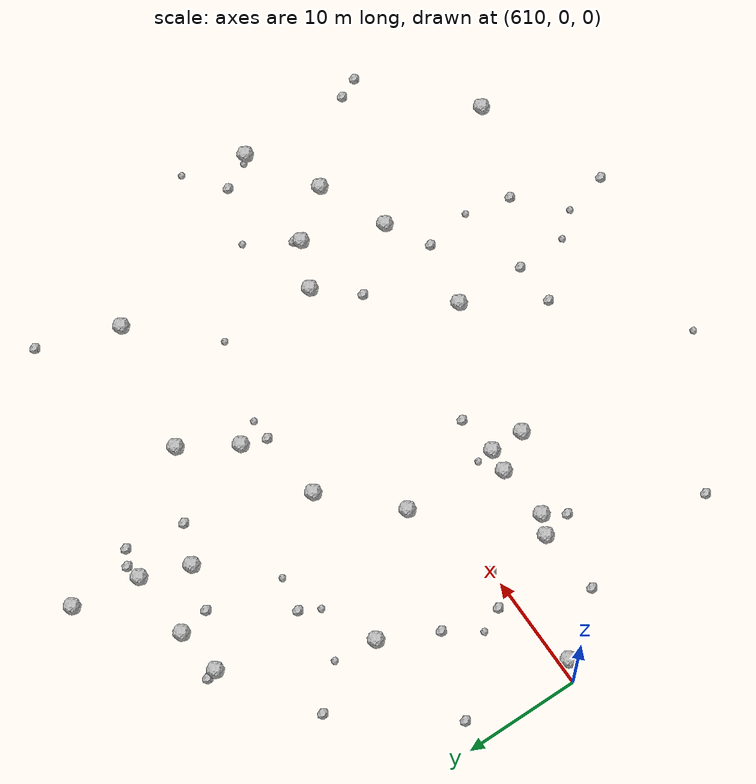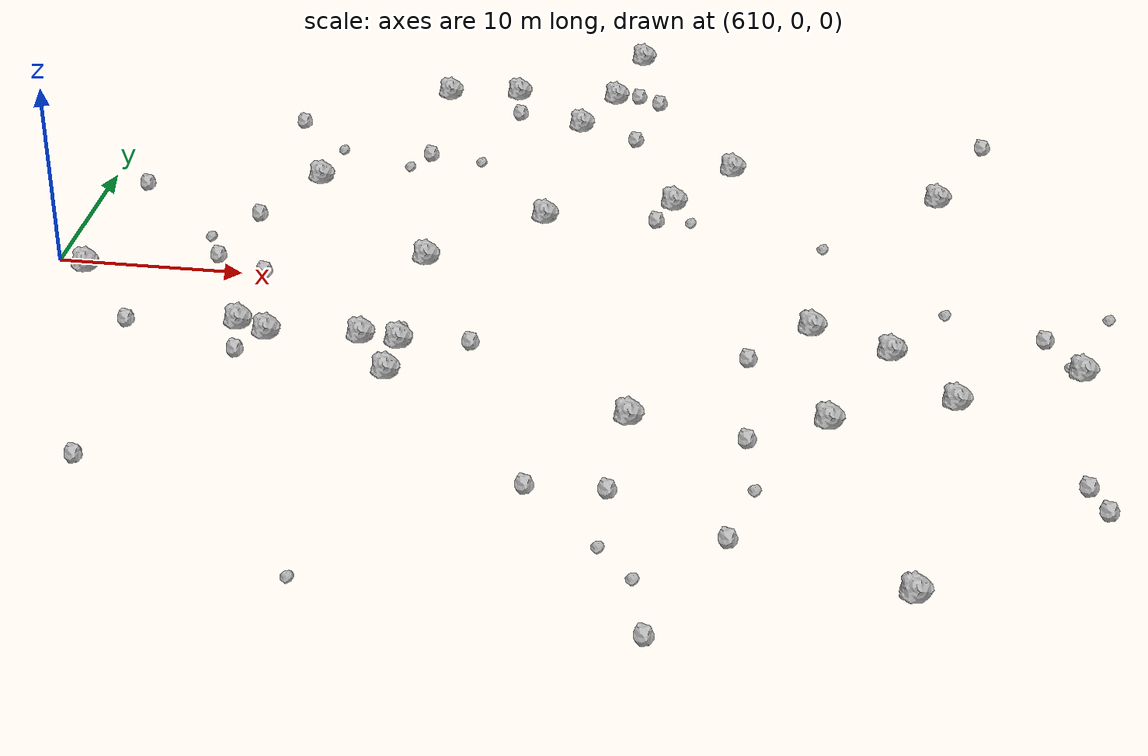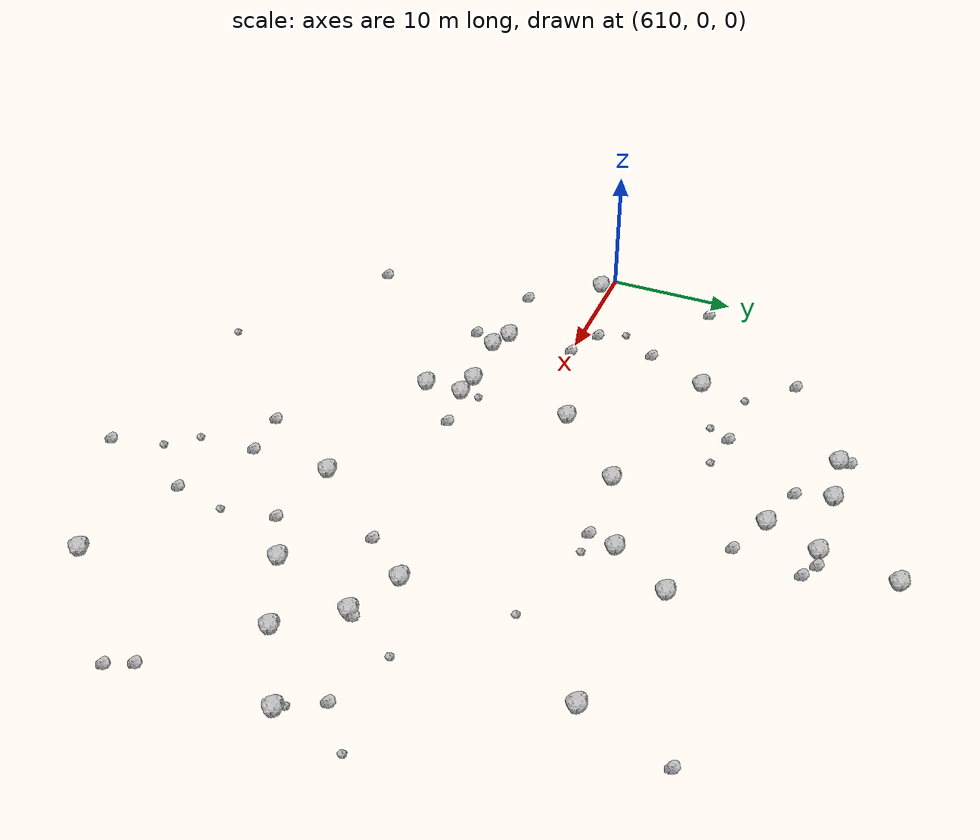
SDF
<sdf version="1.6">
 <world name="default">
  <include><uri>model://sun</uri></include>
  <model name="rock1_16_3">
   <include><uri>model://rock1</uri><pose>656.1149569980562 13.201536090829585 0.5 0 0 0</pose></include>
  </model>
  <model name="rock1_16_4">
   <include><uri>model://rock1</uri><pose>622.9148855486496 -6.065737663964143 0.5 0 0 0</pose></include>
  </model>
  <model name="rock1_16_5">
   <include><uri>model://rock1</uri><pose>650.1467537836565 -1.6864975403233018 0.5 0 0 0</pose></include>
  </model>
  <model name="rock1_16_6">
   <include><uri>model://rock1</uri><pose>654.2065766695247 -3.5124035258955857 0.5 0 0 0</pose></include>
  </model>
  <model name="rock1_16_7">
   <include><uri>model://rock1</uri><pose>629.6743814128226 -8.888810011958455 0.5 0 0 0</pose></include>
  </model>
  <model name="rock1_16_8">
   <include><uri>model://rock1</uri><pose>641.7026719829911 10.770928814416408 0.5 0 0 0</pose></include>
  </model>
  <model name="rock1_16_9">
   <include><uri>model://rock1</uri><pose>621.241692226689 -5.297242970264843 0.5 0 0 0</pose></include>
  </model>
  <model name="rock1_16_10">
   <include><uri>model://rock1</uri><pose>630.8978803253377 23.5445969078598 0.5 0 0 0</pose></include>
  </model>
  <model name="rock1_16_11">
   <include><uri>model://rock1</uri><pose>642.0374478030577 -11.254294582027697 0.5 0 0 0</pose></include>
  </model>
  <model name="rock1_16_12">
   <include><uri>model://rock1</uri><pose>634.8902242769249 8.204998214174097 0.5 0 0 0</pose></include>
  </model>
  <model name="rock1_16_13">
   <include><uri>model://rock1</uri><pose>635.2395317567391 19.761060834143144 0.5 0 0 0</pose></include>
  </model>
  <model name="rock1_16_14">
   <include><uri>model://rock1</uri><pose>651.5205260311714 -10.237457767179986 0.5 0 0 0</pose></include>
  </model>
  <model name="rock1_16_15">
   <include><uri>model://rock1</uri><pose>611.684250035289 -0.7187004358383788 0.5 0 0 0</pose></include>
  </model>
  <model name="rock1_16_16">
   <include><uri>model://rock1</uri><pose>636.7579632555324 23.830117460936002 0.5 0 0 0</pose></include>
  </model>
  <model name="rock1_16_17">
   <include><uri>model://rock1</uri><pose>629.3659525218284 2.6970724657225276 0.5 0 0 0</pose></include>
  </model>
  <model name="rock1_16_18">
   <include><uri>model://rock1</uri><pose>657.5065878998355 -7.6468018472649355 0.5 0 0 0</pose></include>
  </model>
  <model name="rock1_16_19">
   <include><uri>model://rock1</uri><pose>621.67759717573 11.037159824020243 0.5 0 0 0</pose></include>
  </model>
  <model name="rock1_16_20">
   <include><uri>model://rock1</uri><pose>637.6999892867808 29.598292940463487 0.5 0 0 0</pose></include>
  </model>
  <model name="rock1_16_21">
   <include><uri>model://rock1</uri><pose>629.7034445821932 -5.947622430997775 0.5 0 0 0</pose></include>
  </model>
  <model name="rock1_16_22">
   <include><uri>model://rock1</uri><pose>655.9946921489988 -23.328607278813426 0.5 0 0 0</pose></include>
  </model>
  <model name="rock1_16_23">
   <include><uri>model://rock1</uri><pose>663.5956941839286 -4.085917529573194 0.5 0 0 0</pose></include>
  </model>
  <model name="rock1_16_24">
   <include><uri>model://rock1</uri><pose>627.7139357502149 -5.719378001251897 0.5 0 0 0</pose></include>
  </model>
  <model name="rock1_16_25">
   <include><uri>model://rock1</uri><pose>626.791089778512 23.00532312882477 0.5 0 0 0</pose></include>
  </model>
  <model name="rock1_16_26">
   <include><uri>model://rock1</uri><pose>644.5338365501409 15.305789906799 0.5 0 0 0</pose></include>
  </model>
  <model name="rock2_16_0">
   <include><uri>model://rock2</uri><pose>639.4000453961551 23.3800926518461 0.3 0 0 0</pose></include>
  </model>
  <model name="rock2_16_1">
   <include><uri>model://rock2</uri><pose>640.9606859196468 8.656851451280083 0.3 0 0 0</pose></include>
  </model>
  <model name="rock2_16_2">
   <include><uri>model://rock2</uri><pose>619.0108238002518 17.928798963787152 0.3 0 0 0</pose></include>
  </model>
  <model name="rock2_16_3">
   <include><uri>model://rock2</uri><pose>647.6380200894644 -20.434048687477173 0.3 0 0 0</pose></include>
  </model>
  <model name="rock2_16_4">
   <include><uri>model://rock2</uri><pose>658.4718597873482 20.1797125140278 0.3 0 0 0</pose></include>
  </model>
  <model name="rock2_16_5">
   <include><uri>model://rock2</uri><pose>647.1940739177986 -5.086097128393966 0.3 0 0 0</pose></include>
  </model>
  <model name="rock2_16_6">
   <include><uri>model://rock2</uri><pose>616.8618410213734 -18.18016453178396 0.3 0 0 0</pose></include>
  </model>
  <model name="rock2_16_7">
   <include><uri>model://rock2</uri><pose>626.5623818402208 23.855210571555794 0.3 0 0 0</pose></include>
  </model>
  <model name="rock2_16_8">
   <include><uri>model://rock2</uri><pose>615.5159241655155 -5.791870137758114 0.3 0 0 0</pose></include>
  </model>
  <model name="rock2_16_9">
   <include><uri>model://rock2</uri><pose>664.3893537910765 -15.869517377840573 0.3 0 0 0</pose></include>
  </model>
  <model name="rock2_16_10">
   <include><uri>model://rock2</uri><pose>663.5457609483404 -14.038786667447383 0.3 0 0 0</pose></include>
  </model>
  <model name="rock2_16_11">
   <include><uri>model://rock2</uri><pose>647.7720139998 -12.340776942718954 0.3 0 0 0</pose></include>
  </model>
  <model name="rock2_16_12">
   <include><uri>model://rock2</uri><pose>641.8441874944782 -17.408143703732186 0.3 0 0 0</pose></include>
  </model>
  <model name="rock2_16_13">
   <include><uri>model://rock2</uri><pose>621.7738019432876 -7.857628984073951 0.3 0 0 0</pose></include>
  </model>
  <model name="rock2_16_14">
   <include><uri>model://rock2</uri><pose>633.2784475901229 -5.468064457967859 0.3 0 0 0</pose></include>
  </model>
  <model name="rock2_16_15">
   <include><uri>model://rock2</uri><pose>619.3553055593313 6.273706119065146 0.3 0 0 0</pose></include>
  </model>
  <model name="rock2_16_16">
   <include><uri>model://rock2</uri><pose>654.5042868753445 -3.029242190628871 0.3 0 0 0</pose></include>
  </model>
  <model name="rock2_16_17">
   <include><uri>model://rock2</uri><pose>638.0831682409187 24.101447032969915 0.3 0 0 0</pose></include>
  </model>
  <model name="rock2_16_18">
   <include><uri>model://rock2</uri><pose>638.6132871057251 18.31851510602783 0.3 0 0 0</pose></include>
  </model>
  <model name="rock2_16_19">
   <include><uri>model://rock2</uri><pose>638.0413669058834 -17.597495454718672 0.3 0 0 0</pose></include>
  </model>
  <model name="rock2_16_20">
   <include><uri>model://rock2</uri><pose>644.8260782885756 -27.878172758963608 0.3 0 0 0</pose></include>
  </model>
  <model name="rock2_16_21">
   <include><uri>model://rock2</uri><pose>661.7558179773889 -1.1409266416933797 0.3 0 0 0</pose></include>
  </model>
  <model name="rock2_16_22">
   <include><uri>model://rock2</uri><pose>621.2129542328767 0.08583254682686814 0.3 0 0 0</pose></include>
  </model>
  <model name="rock2_16_23">
   <include><uri>model://rock2</uri><pose>631.4120534535467 20.87983798019303 0.3 0 0 0</pose></include>
  </model>
  <model name="rock2_16_24">
   <include><uri>model://rock2</uri><pose>618.3814971858595 1.3851109536599928 0.3 0 0 0</pose></include>
  </model>
  <model name="rock2_16_25">
   <include><uri>model://rock2</uri><pose>627.2280487681813 14.808066198010081 0.3 0 0 0</pose></include>
  </model>
  <model name="rock2_16_26">
   <include><uri>model://rock2</uri><pose>612.1868394524902 8.93076706792668 0.3 0 0 0</pose></include>
  </model>
  <model name="rock3_16_0">
   <include><uri>model://rock3</uri><pose>617.3717033303817 3.4237803412719643 0.2 0 0 0</pose></include>
  </model>
  <model name="rock3_16_1">
   <include><uri>model://rock3</uri><pose>626.3073914870874 13.122601278648041 0.2 0 0 0</pose></include>
  </model>
  <model name="rock3_16_2">
   <include><uri>model://rock3</uri><pose>630.2239950076713 14.260932494511067 0.2 0 0 0</pose></include>
  </model>
  <model name="rock3_16_3">
   <include><uri>model://rock3</uri><pose>642.008434512604 -21.895615048050097 0.2 0 0 0</pose></include>
  </model>
  <model name="rock3_16_4">
   <include><uri>model://rock3</uri><pose>648.4829372517212 -16.492771161164747 0.2 0 0 0</pose></include>
  </model>
  <model name="rock3_16_5">
   <include><uri>model://rock3</uri><pose>662.9735032913414 -3.581208813996458 0.2 0 0 0</pose></include>
  </model>
  <model name="rock3_16_6">
   <include><uri>model://rock3</uri><pose>622.1020352092114 14.66690627153536 0.2 0 0 0</pose></include>
  </model>
  <model name="rock3_16_7">
   <include><uri>model://rock3</uri><pose>642.8290910126659 8.685234708521591 0.2 0 0 0</pose></include>
  </model>
  <model name="rock3_16_8">
   <include><uri>model://rock3</uri><pose>643.8241716879634 -24.000280208691933 0.2 0 0 0</pose></include>
  </model>
  <model name="rock3_16_9">
   <include><uri>model://rock3</uri><pose>656.733869578373 0.6735293435753533 0.2 0 0 0</pose></include>
  </model>
  <model name="rock3_16_10">
   <include><uri>model://rock3</uri><pose>629.559240195782 -4.53576050532714 0.2 0 0 0</pose></include>
  </model>
  <model name="rock3_16_11">
   <include><uri>model://rock3</uri><pose>629.0196828737736 -26.019410117789747 0.2 0 0 0</pose></include>
  </model>
  <model name="rock3_16_12">
   <include><uri>model://rock3</uri><pose>650.1300012673453 6.765130559505202 0.2 0 0 0</pose></include>
  </model>
  <model name="rock3_16_13">
   <include><uri>model://rock3</uri><pose>665.0091532784315 1.3959149628881953 0.2 0 0 0</pose></include>
  </model>
 </world>
</sdf>
